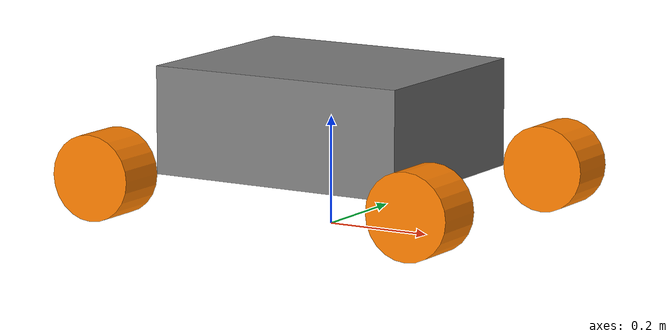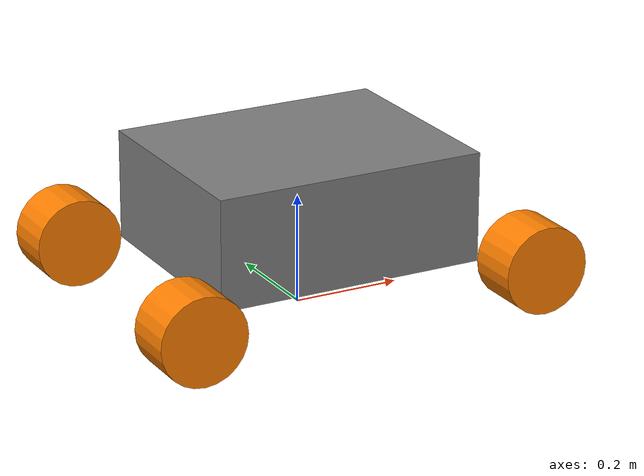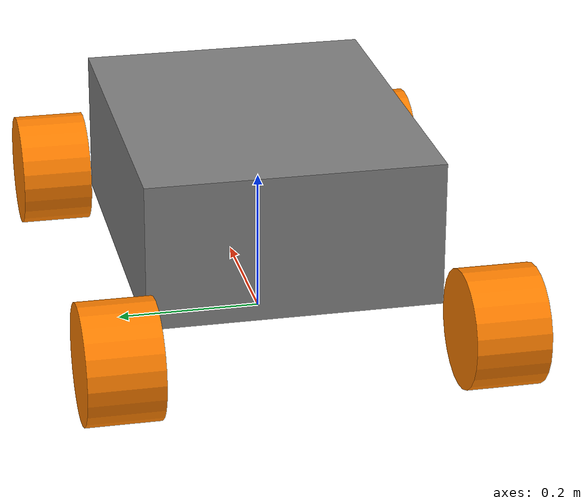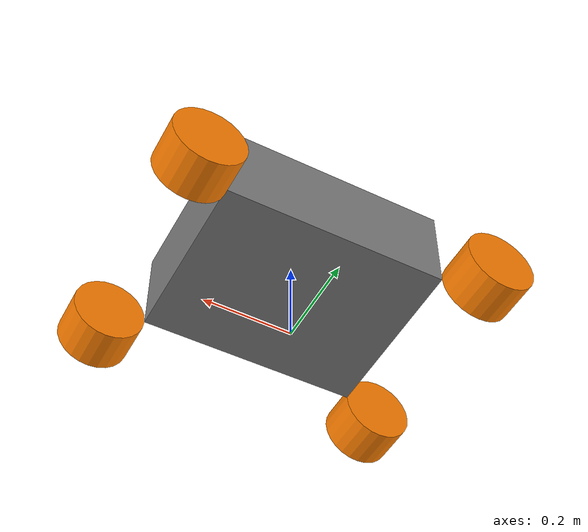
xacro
<?xml version="1.0"?>
<robot xmlns:xacro="http://www.ros.org/wiki/xacro">

<xacro:property name="base_length" value="0.5" />
<xacro:property name="base_width" value="0.4" />
<xacro:property name="base_height" value="0.2" />
<xacro:property name="wheel_radius" value="0.08" />
<xacro:property name="wheel_length" value="0.1" />

<xacro:include filename="rover_essentials.urdf.xacro" />

<link name="base_footprint" />

<link name="base_link">
    <visual>
        <geometry>
            <box size="${base_length} ${base_width} ${base_height}" />
        </geometry>
        <material name="grey" />
        <origin xyz="0 0 ${base_height / 2.0} " rpy="0 0 0"  />
    </visual>

    <collision>
            <geometry>
                <box size="${base_length} ${base_width} ${base_height}" />
            </geometry>
            <origin xyz="0 0 ${base_height / 2.0}" rpy="0 0 0" />
    </collision>

    <xacro:box_inertia m="5.0"
                       x="${base_length}" y="${base_width}" z="${base_height}"
                       o_xyz="0 0 ${base_height / 2.0}"
                       o_rpy="0 0 0" />

</link>

<xacro:macro name="wheel_link" params="prefix">
<link name="${prefix}_wheel_link">
    <visual>
            <geometry>
                <cylinder radius="${wheel_radius}" length="${wheel_length}" />
            </geometry>
            <material name="orange" />
            <origin xyz= "0 0 0" rpy="${pi / 2.0} 0 0" />
    </visual>

    <collision>
        <geometry>
            <cylinder radius="${wheel_radius}" length="${wheel_length}" />
        </geometry>
    <origin xyz="0 0 0" rpy="${pi / 2.0} 0 0" />
    </collision>

    <xacro:cylinder_inertia m="1.0" r="${wheel_radius}" h="${wheel_length}"
                        o_xyz="0 0 0" o_rpy="${pi / 2.0} 0 0"/>
</link>
</xacro:macro>

<xacro:wheel_link prefix="front_right" />
<xacro:wheel_link prefix="front_left" />
<xacro:wheel_link prefix="rear_right" />
<xacro:wheel_link prefix="rear_left" />

<joint name="base_joint" type="fixed">
    <parent link="base_footprint" />
    <child link="base_link" />
    <origin xyz="0 0 ${base_height / 2}" rpy="0 0 0" />
</joint>

<joint name="base_front_right_wheel_joint" type="continuous">
    <parent link="base_link" />
    <child link="front_right_wheel_link" />
    <origin xyz="${base_length / 2 + wheel_radius}   ${-(base_width / 2 + wheel_length / 2)} 0" rpy= "0 0 0" />
    <axis xyz= "0 1 0" />
</joint>

<joint name="base_front_left_wheel_joint" type="continuous">
    <parent link="base_link" />
    <child link="front_left_wheel_link" />
    <origin xyz="${base_length / 2 + wheel_radius}   ${(base_width / 2 + wheel_length / 2)} 0" rpy= "0 0 0" />
    <axis xyz= "0 1 0" />
</joint>

<joint name="base_rear_right_wheel_joint" type="continuous">
    <parent link="base_link" />
    <child link="rear_right_wheel_link" />
    <origin xyz="${-(base_length / 2 + wheel_radius)}   ${-(base_width / 2 + wheel_length / 2)} 0" rpy= "0 0 0" />
    <axis xyz= "0 1 0" />
</joint>

<joint name="base_rear_left_wheel_joint" type="continuous">
    <parent link="base_link" />
    <child link="rear_left_wheel_link" />
    <origin xyz="${-(base_length / 2 + wheel_radius)}   ${(base_width / 2 + wheel_length / 2)} 0" rpy= "0 0 0" />
    <axis xyz= "0 1 0" />
</joint>

</robot>

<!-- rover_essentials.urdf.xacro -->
<robot xmlns:xacro="http://www.ros.org/wiki/xacro">
    <material name="blue">
        <color rgba="0 0 0.5 1" />
    </material>

    <material name="grey">
        <color rgba="0.5 0.5 0.5 1" />
    </material>

    <material name="orange">
        <color rgba="1.0 0.5 0.0 1.0" />
    </material>

<xacro:macro name="box_inertia" params="m x y z o_xyz o_rpy">
    <inertial>
        <mass value="${m}" />
        <origin xyz="${o_xyz}" rpy="${o_rpy}" />
        <inertia ixx="${(m / 12.0) * (y*y + z*z)}" ixy="0" ixz="0"
                 iyy="${(m / 12.0) * (x*x + z*z)}" iyz="0"
                 izz="${(m / 12.0) * (y*y + x*x)}" />
    </inertial>
</xacro:macro>

<xacro:macro name="cylinder_inertia" params="m r h o_xyz o_rpy">
    <inertial>
        <mass value="${m}" />
        <origin xyz="${o_xyz}" rpy="${o_rpy}" />
        <inertia ixx="${(m / 12.0) * (3.0*r*r + h*h)}" ixy="0" ixz="0"
                 iyy="${(m / 12.0) * (3.0*r*r + h*h)}" iyz="0"
                 izz="${(m / 2.0) * (r*r)}" />
    </inertial>
</xacro:macro>

</robot>
